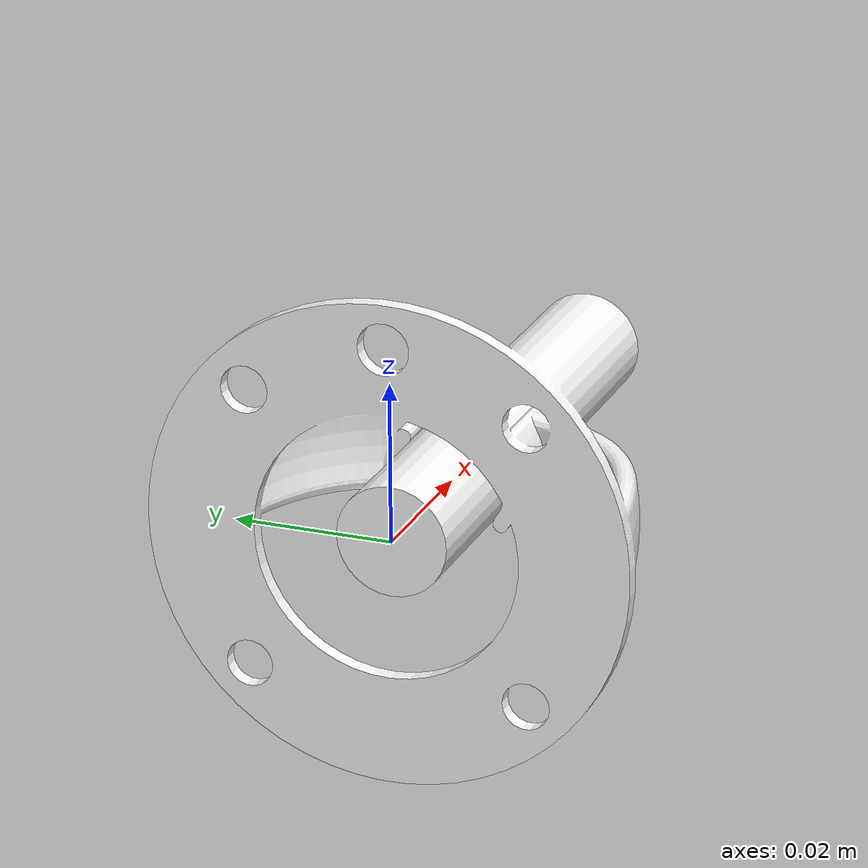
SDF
<?xml version="1.0" ?>
<sdf version="1.6">
  <model name="marker">
    <static>false</static>
    <link name="marker_link">
      <visual name="marker_visual">
        <geometry>
          <mesh>
            <uri>file:///home/bigchungus/ros2_iron_ws/src/move_robot/models/marker.stl</uri>
            <scale>0.001 0.001 0.001</scale>
          </mesh>
        </geometry>
        <material>
          <ambient>1 1 1 1</ambient>
          <diffuse>1 1 1 1</diffuse>
        </material>
      </visual>
      <collision name="marker_collision">
        <geometry>
          <mesh>
            <uri>file:///home/bigchungus/ros2_iron_ws/src/move_robot/models/marker.stl</uri>
            <scale>0.001 0.001 0.001</scale>
          </mesh>
        </geometry>
      </collision>
      <inertial>
        <mass>0.01</mass>
        <inertia>
          <ixx>0.001</ixx>
          <ixy>0</ixy>
          <ixz>0</ixz>
          <iyy>0.001</iyy>
          <iyz>0</iyz>
          <izz>0.001</izz>
        </inertia>
      </inertial>
    </link>
  </model>
</sdf>
